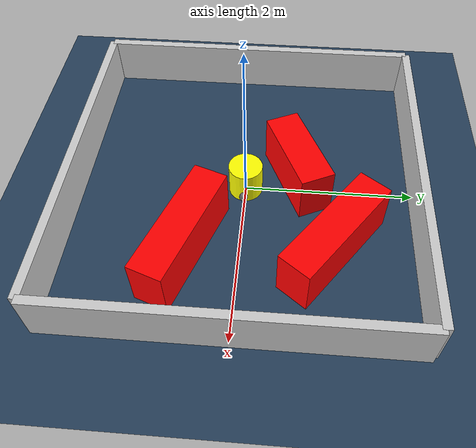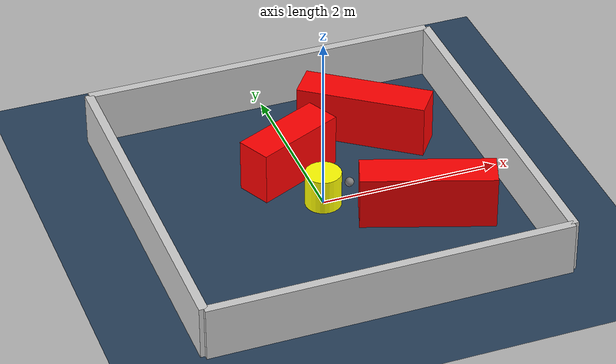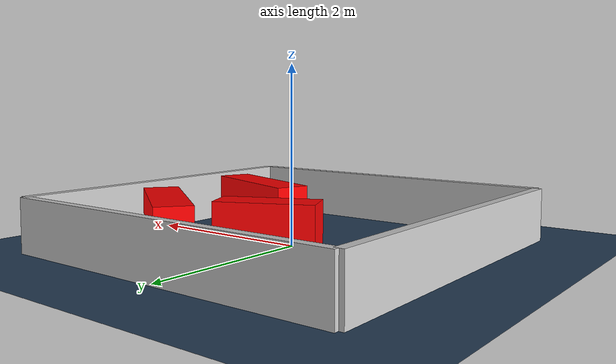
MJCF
<?xml version="1.0" ?>
<mujoco model="generated_environment">
  <option timestep="0.01" integrator="RK4" cone="elliptic"/>
  <default>
    <geom density="1"/>
  </default>
  <asset>
    <texture builtin="gradient" height="3072" rgb1="0.3 0.5 0.7" rgb2="0 0 0" type="skybox" width="512"/>
    <texture builtin="checker" height="300" mark="edge" markrgb="0.8 0.8 0.8" name="groundplane" rgb1="0.2 0.3 0.4" rgb2="0.1 0.2 0.3" type="2d" width="300"/>
    <material name="groundplane" reflectance="0.2" texrepeat="5 5" texture="groundplane" texuniform="true"/>
    <material name="robot" rgba="0.0 1.0 0.0 1"/>
  </asset>
  <worldbody>
    <light dir="0 0 -1" directional="true" pos="0 0 1.5"/>
    <geom condim="4" friction="1.0 0.005 0.001" material="groundplane" name="floor" size="0 0 0.05" type="plane"/>
    <body name="walls">
      <geom name="wall_1" condim="4" pos="-2.0 0.0 0.3" rgba="0.800000011920929 0.800000011920929 0.800000011920929 1.0" size="0.05 2.0 0.3" type="box"/>
      <geom name="wall_2" condim="4" pos="2.0 0.0 0.3" rgba="0.800000011920929 0.800000011920929 0.800000011920929 1.0" size="0.05 2.0 0.3" type="box"/>
      <geom name="wall_3" condim="4" pos="0.0 -2.0 0.3" rgba="0.800000011920929 0.800000011920929 0.800000011920929 1.0" size="2.0 0.05 0.3" type="box"/>
      <geom name="wall_4" condim="4" pos="0.0 2.0 0.3" rgba="0.800000011920929 0.800000011920929 0.800000011920929 1.0" size="2.0 0.05 0.3" type="box"/>
    </body>
    <body name="robot">
      <joint name="joint_x" type="slide" pos="0 0 0" axis="1 0 0"/>
      <joint name="joint_y" type="slide" pos="0 0 0" axis="0 1 0"/>
      <geom name="robot" type="sphere" pos="0.3 0.0 0.2" size="0.05" mass="5." friction="1.0 0.005 0.0001" condim="4" rgba="0.5 0.5 0.5 1.0"/>
      <site name="sensor_ball"/>
    </body>
    <body name="obstacle_movable_1">
      <geom name="obstacle_movable_1" condim="4" pos="0.0 0.0 0.2" euler="0 0 0.0" friction="1.0 0.005 0.001" rgba="1.0 1.0 0.0 1.0" size="0.2 0.2 0.0" type="cylinder" mass="0.1"/>
      <joint type="free"/>
    </body>
    <body name="obstacle_2_static">
      <geom name="obstacle_2_static" condim="4" pos="0.9571556487345327 -0.6070659800757734 0.3" euler="0 0 340.3886842886622" friction="1.0 0.005 0.001" rgba="1 0 0 1" size="0.7301398365615344 0.2 0.3" type="box"/>
    </body>
    <body name="obstacle_3_static">
      <geom name="obstacle_3_static" condim="4" pos="0.8748398533430417 1.0298789402783266 0.3" euler="0 0 143.3107092254907" friction="1.0 0.005 0.001" rgba="1 0 0 1" size="0.7273564122486977 0.2 0.3" type="box"/>
    </body>
    <body name="obstacle_4_static">
      <geom name="obstacle_4_static" condim="4" pos="-0.173891777437712 0.612521106825678 0.3" euler="0 0 24.98884092833304" friction="1.0 0.005 0.001" rgba="1 0 0 1" size="0.5313766355896612 0.2 0.3" type="box"/>
    </body>
  </worldbody>
  <actuator>
    <motor name="actuator_x" joint="joint_x" gear="1" ctrlrange="-1 1"/>
    <motor name="actuator_y" joint="joint_y" gear="1" ctrlrange="-1 1"/>
  </actuator>
</mujoco>
